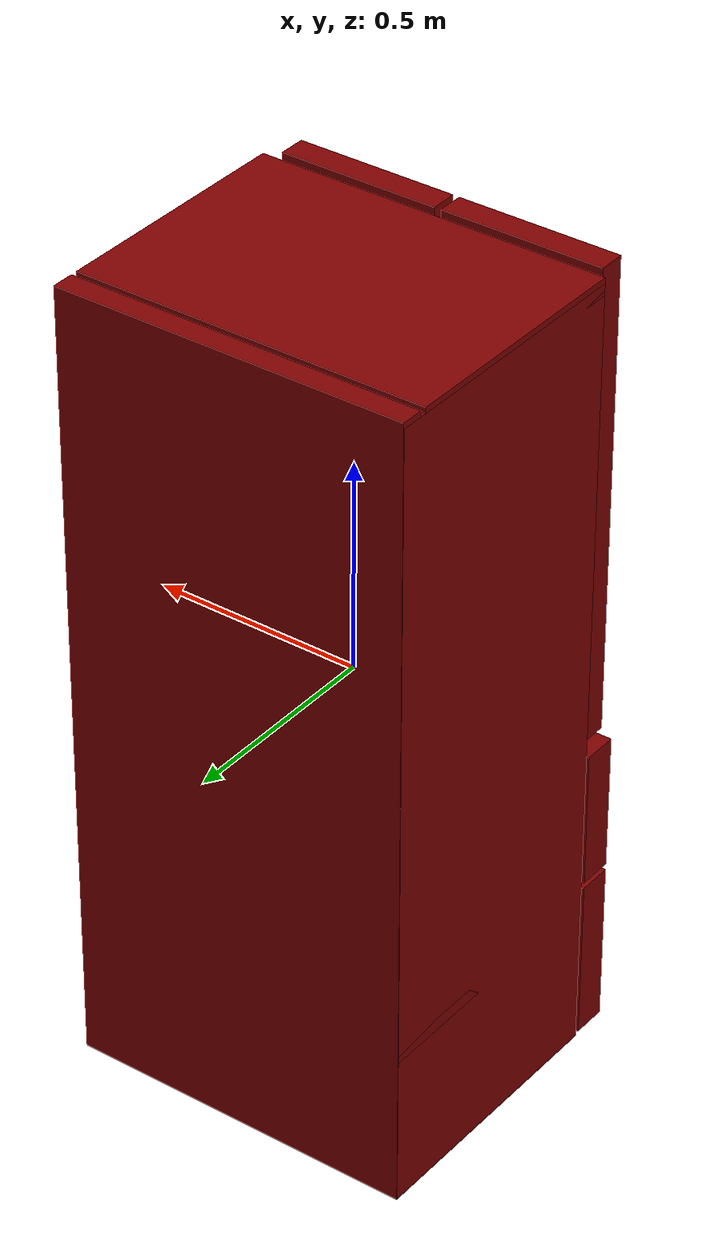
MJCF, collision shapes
<mujoco model="model">
  <compiler angle="radian"/>
  <asset>
    <mesh file="visuals/Body001.obj" name="Body001_vis"/>
    <mesh file="visuals/Body001_Clear.obj" name="Body001_Clear_vis"/>
    <mesh file="visuals/Door001.obj" name="Door001_vis"/>
    <mesh file="visuals/Door002.obj" name="Door002_vis"/>
    <mesh file="visuals/Drawer001.obj" name="Drawer001_vis"/>
    <mesh file="visuals/Drawer002.obj" name="Drawer002_vis"/>
    <texture file="visuals/T_BC001.png" name="Body001_material" type="2d"/>
    <material name="Body001_material" rgba="1 1 1 1.0" texture="Body001_material" shininess="0.141421377658844" specular="0.3103448502657381"/>
    <texture file="visuals/T_BC001.png" name="Body001_Clear_material" type="2d"/>
    <material name="Body001_Clear_material" rgba="1 1 1 0.6290349960327148" texture="Body001_Clear_material" shininess="0.141421377658844" specular="0.3103448502657381"/>
    <texture file="visuals/T_BC001.png" name="Door001_material" type="2d"/>
    <material name="Door001_material" rgba="1 1 1 1.0" texture="Door001_material" shininess="0.141421377658844" specular="0.3103448502657381"/>
    <texture file="visuals/T_BC001.png" name="Door002_material" type="2d"/>
    <material name="Door002_material" rgba="1 1 1 1.0" texture="Door002_material" shininess="0.141421377658844" specular="0.3103448502657381"/>
    <texture file="visuals/T_BC001.png" name="Drawer001_material" type="2d"/>
    <material name="Drawer001_material" rgba="1 1 1 1.0" texture="Drawer001_material" shininess="0.141421377658844" specular="0.3103448502657381"/>
    <texture file="visuals/T_BC001.png" name="Drawer002_material" type="2d"/>
    <material name="Drawer002_material" rgba="1 1 1 1.0" texture="Drawer002_material" shininess="0.141421377658844" specular="0.3103448502657381"/>
  </asset>
  <default>
    <default class="visual">
      <geom conaffinity="0" contype="0" group="1" type="mesh"/>
    </default>
    <default class="collision">
      <geom group="0" rgba="0.5 0 0 0.5"/>
    </default>
    <default class="spawn">
      <geom group="0" rgba="1 1 1 0.5" contype="0" conaffinity="0"/>
      <site group="0" rgba="1 1 1 0.5"/>
    </default>
    <default class="region">
      <geom group="1" conaffinity="0" contype="0" rgba="0 1 0 0"/>
    </default>
  </default>
  <worldbody>
    <body>
      <body name="object">
        <geom mesh="Body001_vis" type="mesh" solimp="0.998 0.998 0.001" solref="0.001 1" density="100" friction="0.95 0.3 0.1" class="visual" material="Body001_material"/>
        <geom class="collision" type="box" pos="-7.513164746342227e-05 0.04466533660888672 0.9328716397285461" size="0.41647589206695557 0.2959442734718323 0.020333202555775642" quat="1.0 0.0 0.0 0.0"/>
        <geom class="collision" type="box" pos="-0.4017854928970337 0.07819262146949768 -0.003863781923428178" size="0.014765639789402485 0.32947275042533875 0.9433139562606812" quat="1.0 0.0 0.0 0.0"/>
        <geom class="collision" type="box" pos="0.4008731245994568 0.07819262146949768 -0.0038637814577668905" size="0.01592404395341873 0.32947269082069397 0.9433139562606812" quat="1.0 0.0 0.0 0.0"/>
        <geom class="collision" type="box" pos="-7.513164746342227e-05 0.07819263637065887 -0.19079875946044922" size="0.41647589206695557 0.3294715881347656 0.03876152262091637" quat="1.0 0.0 0.0 0.0"/>
        <geom class="collision" type="box" pos="-7.513164746342227e-05 0.07819263637065887 -0.5415087342262268" size="0.41647589206695557 0.3294715881347656 0.03876152262091637" quat="1.0 0.0 0.0 0.0"/>
        <geom class="collision" type="box" pos="-7.513164746342227e-05 0.3823710083961487 0.0030136406421661377" size="0.41647589206695557 0.026983700692653656 0.9501913189888" quat="1.0 0.0 0.0 0.0"/>
        <geom class="collision" type="box" pos="-7.513164746342227e-05 -0.23726047575473785 0.18067839741706848" size="0.39623501896858215 0.0070860423147678375 0.008046308532357216" quat="1.0 0.0 0.0 0.0"/>
        <geom class="collision" type="box" pos="-7.513164746342227e-05 0.2574968934059143 0.18067839741706848" size="0.3962337374687195 0.020284228026866913 0.008046307601034641" quat="1.0 0.0 0.0 0.0"/>
        <geom class="collision" type="box" pos="-7.513164746342227e-05 -0.23726047575473785 0.5749231576919556" size="0.396234929561615 0.007086040452122688 0.008046306669712067" quat="1.0 0.0 0.0 0.0"/>
        <geom class="collision" type="box" pos="-7.513164746342227e-05 0.2574968934059143 0.5749231576919556" size="0.3962337374687195 0.020284222438931465 0.008046305738389492" quat="1.0 0.0 0.0 0.0"/>
        <geom class="collision" type="box" pos="-7.513164746342227e-05 0.07819263637065887 -0.9353104829788208" size="0.4164753258228302 0.32947078347206116 0.014351028949022293" quat="1.0 0.0 0.0 0.0"/>
        <geom class="collision" type="box" pos="0.0038310259114950895 0.07819262146949768 0.38063856959342957" size="0.012456019409000874 0.32947269082069397 0.5448172092437744" quat="1.0 0.0 0.0 0.0"/>
        <body name="Body001_Clear">
          <geom mesh="Body001_Clear_vis" type="mesh" solimp="0.998 0.998 0.001" solref="0.001 1" density="100" friction="0.95 0.3 0.1" class="visual" material="Body001_Clear_material"/>
          <geom class="collision" type="box" pos="0.0 0.0072049228474497795 0.569654107093811" size="0.3865222930908203 0.25105828046798706 0.006889670621603727" quat="1.0 0.0 0.0 0.0"/>
          <geom class="collision" type="box" pos="0.0 0.0072049228474497795 0.17660239338874817" size="0.3865222930908203 0.25105828046798706 0.006889670621603727" quat="1.0 0.0 0.0 0.0"/>
        </body>
        <body name="Door001">
          <joint axis="0.0 0.0 -1.0" pos="-0.37534621357917786 -0.3070952296257019 0.3815324008464813" limited="true" name="Door001_joint" range="0.0 1.5707963267948966" type="hinge" damping="1" frictionloss="1" armature=".01" stiffness="0.05"/>
          <geom mesh="Door001_vis" type="mesh" solimp="0.998 0.998 0.001" solref="0.001 1" density="100" friction="0.95 0.3 0.1" class="visual" material="Door001_material"/>
          <geom class="collision" type="box" pos="-0.19733533263206482 -0.31317657232284546 0.38234037160873413" size="0.193319633603096 0.03149494528770447 0.5682832598686218" quat="1.0 0.0 0.0 0.0"/>
          <geom class="collision" type="box" pos="-0.1874624639749527 -0.2587161958217621 0.38717174530029297" size="0.165060892701149 0.006539381109178066 0.532565176486969" quat="1.0 0.0 0.0 0.0"/>
          <geom class="collision" type="box" pos="-0.2034875601530075 -0.21313144266605377 0.8286694288253784" size="0.17405283451080322 0.003400996793061495 0.0340593047440052" quat="0.9986742734909058 0.05147518590092659 -1.1429785662452561e-17 -6.197391851181684e-25"/>
          <geom class="collision" type="box" pos="-0.2034875601530075 -0.22963769733905792 0.7975939512252808" size="0.17405283451080322 0.02237233892083168 0.003458016784861684" quat="1.0 0.0 0.0 0.0"/>
          <geom class="collision" type="box" pos="-0.37653806805610657 -0.2511208951473236 0.8297967910766602" size="0.03272543102502823 0.0034009963274002075 0.043013185262680054" quat="0.47605350613594055 0.5228508710861206 -0.5216354131698608 0.4773850440979004"/>
          <geom class="collision" type="box" pos="-0.030863482505083084 -0.23918837308883667 0.8308866024017334" size="0.03272542729973793 0.0034009963274002075 0.029008248820900917" quat="0.47605350613594055 0.5228508710861206 -0.5216354131698608 0.4773850440979004"/>
          <geom class="collision" type="box" pos="-0.2034875601530075 -0.21195071935653687 0.3929167091846466" size="0.17405283451080322 0.003400996793061495 0.0340593047440052" quat="0.9986742734909058 0.05147518590092659 -1.1429785662452561e-17 -6.197391851181684e-25"/>
          <geom class="collision" type="box" pos="-0.2034875601530075 -0.22845697402954102 0.36184123158454895" size="0.17405283451080322 0.022372335195541382 0.003458016784861684" quat="1.0 0.0 0.0 0.0"/>
          <geom class="collision" type="box" pos="-0.3765566647052765 -0.2426747828722 0.39470764994621277" size="0.03272542729973793 0.0034009963274002075 0.03316066041588783" quat="0.47605350613594055 0.5228508710861206 -0.5216354131698608 0.4773850440979004"/>
          <geom class="collision" type="box" pos="-0.030882081016898155 -0.23074226081371307 0.395797461271286" size="0.03272542357444763 0.003400996560230851 0.02236367203295231" quat="0.47605350613594055 0.5228508710861206 -0.5216354131698608 0.4773850440979004"/>
          <geom class="collision" type="cylinder" pos="-0.06439439952373505 -0.3957209587097168 0.30975350737571716" size="0.011875895783305168 0.30248749256134033" quat="1.0 0.0 0.0 0.0"/>
          <geom class="collision" type="cylinder" pos="-0.06424542516469955 -0.36567413806915283 0.5961837768554688" size="0.005370182916522026 0.02105906419456005" quat="0.7071067094802856 0.70710688829422 -1.5700925641616852e-16 -1.247691989981498e-24"/>
          <geom class="collision" type="cylinder" pos="-0.06424542516469955 -0.36567413806915283 0.023581799119710922" size="0.005370182916522026 0.02105906419456005" quat="0.7071067094802856 0.70710688829422 -1.5700925641616852e-16 -1.247691989981498e-24"/>
        </body>
        <body name="Door002">
          <joint axis="0.0 0.0 1.0" pos="0.3753504455089569 -0.30709511041641235 0.3815281093120575" limited="true" name="Door002_joint" range="0.0 1.5707963267948966" type="hinge" damping="1" frictionloss="1" armature=".01" stiffness="0.05"/>
          <geom mesh="Door002_vis" type="mesh" solimp="0.998 0.998 0.001" solref="0.001 1" density="100" friction="0.95 0.3 0.1" class="visual" material="Door002_material"/>
          <geom class="collision" type="box" pos="0.20094358921051025 -0.31317657232284546 0.382211297750473" size="0.18959581851959229 0.03205398470163345 0.568412721157074" quat="1.0 0.0 0.0 0.0"/>
          <geom class="collision" type="box" pos="0.1903122067451477 -0.2587161958217621 0.38717174530029297" size="0.1607256680727005 0.006539364345371723 0.5325640439987183" quat="1.0 0.0 0.0 0.0"/>
          <geom class="collision" type="box" pos="0.209546759724617 -0.21313144266605377 0.8286694288253784" size="0.16922004520893097 0.003400996793061495 0.0340593047440052" quat="0.9986742734909058 0.05147518590092659 -1.1429785662452561e-17 -6.197391851181684e-25"/>
          <geom class="collision" type="box" pos="0.209546759724617 -0.22963769733905792 0.7975939512252808" size="0.16922004520893097 0.022372325882315636 0.003458016784861684" quat="1.0 0.0 0.0 0.0"/>
          <geom class="collision" type="box" pos="0.04130068048834801 -0.24006648361682892 0.8308064341545105" size="0.03272542729973793 0.0034009963274002075 0.029008248820900917" quat="0.47605350613594055 0.5228508710861206 -0.5216354131698608 0.4773850440979004"/>
          <geom class="collision" type="box" pos="0.3771306574344635 -0.25024276971817017 0.8298769593238831" size="0.03272543102502823 0.0034009963274002075 0.043013185262680054" quat="0.47605350613594055 0.5228508710861206 -0.5216354131698608 0.4773850440979004"/>
          <geom class="collision" type="box" pos="0.209546759724617 -0.21195071935653687 0.3929167091846466" size="0.16922004520893097 0.003400996793061495 0.0340593047440052" quat="0.9986742734909058 0.05147518590092659 -1.1429785662452561e-17 -6.197391851181684e-25"/>
          <geom class="collision" type="box" pos="0.209546759724617 -0.22845697402954102 0.36184123158454895" size="0.16922004520893097 0.022372322157025337 0.003458016784861684" quat="1.0 0.0 0.0 0.0"/>
          <geom class="collision" type="box" pos="0.04128208011388779 -0.23162037134170532 0.3957172930240631" size="0.03272542357444763 0.003400996560230851 0.02236367203295231" quat="0.47605350613594055 0.5228508710861206 -0.5216354131698608 0.4773850440979004"/>
          <geom class="collision" type="box" pos="0.37786316871643066 -0.24179667234420776 0.39478781819343567" size="0.03272542729973793 0.0034009963274002075 0.03316066041588783" quat="0.47605350613594055 0.5228508710861206 -0.5216354131698608 0.4773850440979004"/>
          <geom class="collision" type="cylinder" pos="0.06634988635778427 -0.3957209587097168 0.30975350737571716" size="0.011875895783305168 0.30248749256134033" quat="1.0 0.0 0.0 0.0"/>
          <geom class="collision" type="cylinder" pos="0.0664987787604332 -0.36567413806915283 0.5961837768554688" size="0.005370182916522026 0.02105906419456005" quat="0.7071067094802856 0.70710688829422 -1.5700925641616852e-16 -1.247691989981498e-24"/>
          <geom class="collision" type="cylinder" pos="0.06639230251312256 -0.36567413806915283 0.023581799119710922" size="0.005370182916522026 0.02105906419456005" quat="0.7071067094802856 0.70710688829422 -1.5700925641616852e-16 -1.247691989981498e-24"/>
        </body>
        <body name="Drawer001">
          <joint axis="0.0 -1.0 0.0" pos="3.4322310966672376e-05 -0.07637197524309158 -0.36917975544929504" limited="true" name="Drawer001_joint" range="0.0 0.45" type="slide" damping="1" frictionloss="1" armature=".01" stiffness="0.05"/>
          <geom mesh="Drawer001_vis" type="mesh" solimp="0.998 0.998 0.001" solref="0.001 1" density="100" friction="0.95 0.3 0.1" class="visual" material="Drawer001_material"/>
          <geom class="collision" type="cylinder" pos="-0.0007991644088178873 -0.39255279302597046 -0.2484024316072464" size="0.011875895783305168 0.30248749256134033" quat="0.7071068286895752 1.2101620150417602e-08 0.7071067690849304 -1.2101619262239183e-08"/>
          <geom class="collision" type="cylinder" pos="0.2862045168876648 -0.3625059723854065 -0.24855132400989532" size="0.005370182916522026 0.02105906419456005" quat="0.5 0.5 0.4999999701976776 -0.5"/>
          <geom class="collision" type="cylinder" pos="-0.2864222526550293 -0.3625059723854065 -0.2484448403120041" size="0.005370182916522026 0.02105906419456005" quat="0.5 0.5 0.4999999701976776 -0.5"/>
          <geom class="collision" type="box" pos="0.0001297558774240315 -0.30295687913894653 -0.36854517459869385" size="0.41660720109939575 0.041268203407526016 0.1657266914844513" quat="1.0 0.0 0.0 0.0"/>
          <geom class="collision" type="box" pos="0.0001297558774240315 0.24580968916416168 -0.36384522914886475" size="0.37471258640289307 0.006994304247200489 0.12750312685966492" quat="1.0 0.0 0.0 0.0"/>
          <geom class="collision" type="box" pos="0.0001297558774240315 -0.004941346123814583 -0.4858754873275757" size="0.37471258640289307 0.2581232190132141 0.006994376890361309" quat="1.0 0.0 0.0 0.0"/>
          <geom class="collision" type="box" pos="-0.3601420223712921 -0.0069649191573262215 -0.3643181622028351" size="0.01592971757054329 0.2581233084201813 0.12944939732551575" quat="1.0 0.0 0.0 0.0"/>
          <geom class="collision" type="box" pos="0.3595070540904999 -0.004911164287477732 -0.3631345331668854" size="0.01421266607940197 0.25812333822250366 0.12944941222667694" quat="1.0 0.0 0.0 0.0"/>
        </body>
        <body name="Drawer002">
          <joint axis="0.0 -1.0 0.0" pos="3.432465382502414e-05 -0.07637197524309158 -0.7456809878349304" limited="true" name="Drawer002_joint" range="0.0 0.45" type="slide" damping="1" frictionloss="1" armature=".01" stiffness="0.05"/>
          <geom mesh="Drawer002_vis" type="mesh" solimp="0.998 0.998 0.001" solref="0.001 1" density="100" friction="0.95 0.3 0.1" class="visual" material="Drawer002_material"/>
          <geom class="collision" type="cylinder" pos="-0.0007991644088178873 -0.39255279302597046 -0.5918867588043213" size="0.011875895783305168 0.30248749256134033" quat="0.7071068286895752 1.2101620150417602e-08 0.7071067690849304 -1.2101619262239183e-08"/>
          <geom class="collision" type="cylinder" pos="0.2862045168876648 -0.3625059723854065 -0.5920356512069702" size="0.005370182916522026 0.02105906419456005" quat="0.5 0.5 0.4999999701976776 -0.5"/>
          <geom class="collision" type="cylinder" pos="-0.2864222526550293 -0.3625059723854065 -0.5919291973114014" size="0.005370182916522026 0.02105906419456005" quat="0.5 0.5 0.4999999701976776 -0.5"/>
          <geom class="collision" type="box" pos="0.0001297558774240315 -0.30295687913894653 -0.7458000779151917" size="0.41660720109939575 0.041268203407526016 0.19748368859291077" quat="1.0 0.0 0.0 0.0"/>
          <geom class="collision" type="box" pos="0.0001297558774240315 0.24580968916416168 -0.730482816696167" size="0.37471258640289307 0.006994306575506926 0.148642897605896" quat="1.0 0.0 0.0 0.0"/>
          <geom class="collision" type="box" pos="0.0001297558774240315 -0.004941346123814583 -0.8810129761695862" size="0.37471258640289307 0.25812333822250366 0.006994379218667746" quat="1.0 0.0 0.0 0.0"/>
          <geom class="collision" type="box" pos="-0.35984519124031067 -0.00482183275744319 -0.7329224348068237" size="0.015929723158478737 0.2581234276294708 0.15058915317058563" quat="1.0 0.0 0.0 0.0"/>
          <geom class="collision" type="box" pos="0.36337533593177795 2.5034061934547935e-08 -0.7313795685768127" size="0.014212671667337418 0.2581234574317932 0.15058916807174683" quat="1.0 0.0 0.0 0.0"/>
        </body>
        <geom class="region" name="reg_main" type="box" pos="-7.450580596923828e-09 0.031112447381019592 0.0" size="0.4165242314338684 0.37616634368896484 0.9489999413490295"/>
      </body>
    </body>
  </worldbody>
  <actuator>
    <motor name="Door001_joint_actuator" joint="Door001_joint" gear="50"/>
    <motor name="Door002_joint_actuator" joint="Door002_joint" gear="50"/>
    <motor name="Drawer001_joint_actuator" joint="Drawer001_joint" gear="50"/>
    <motor name="Drawer002_joint_actuator" joint="Drawer002_joint" gear="50"/>
  </actuator>
</mujoco>
